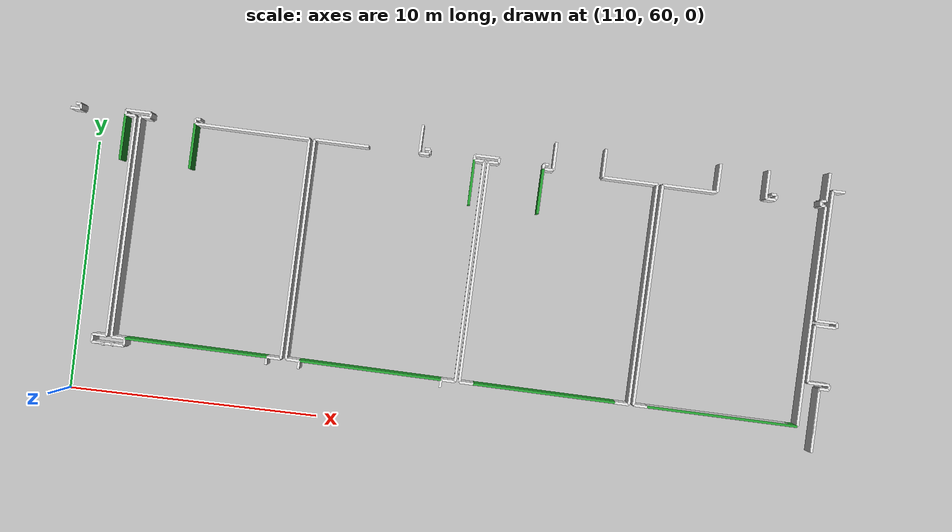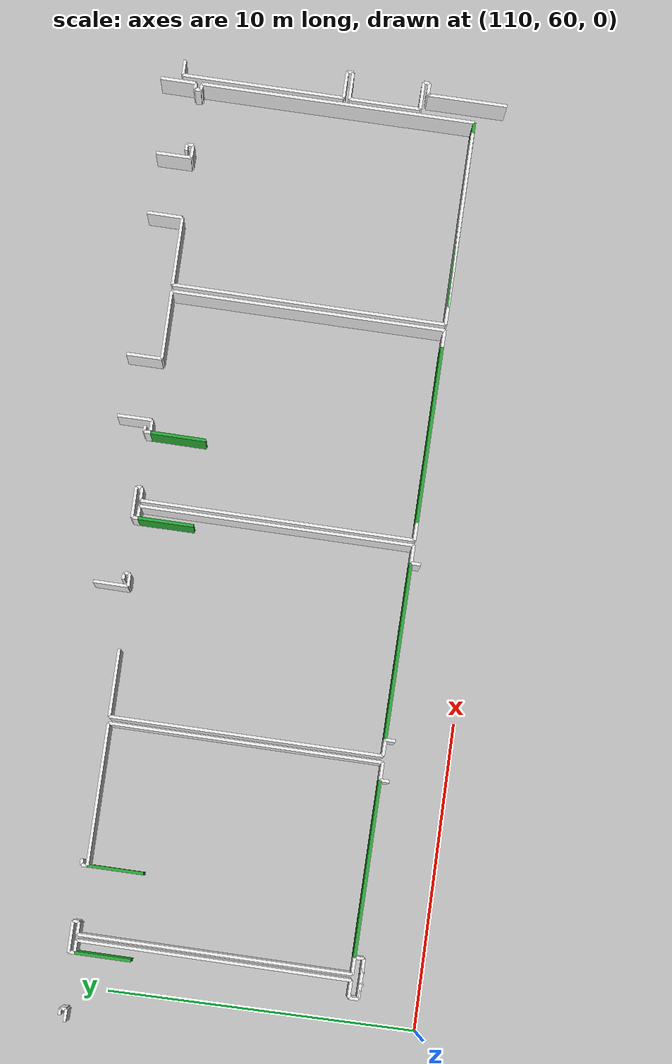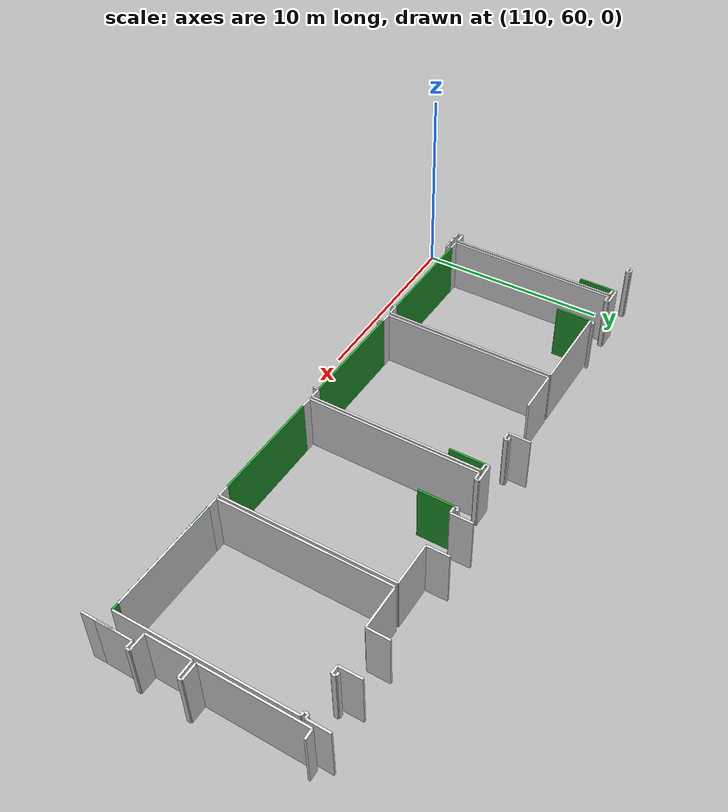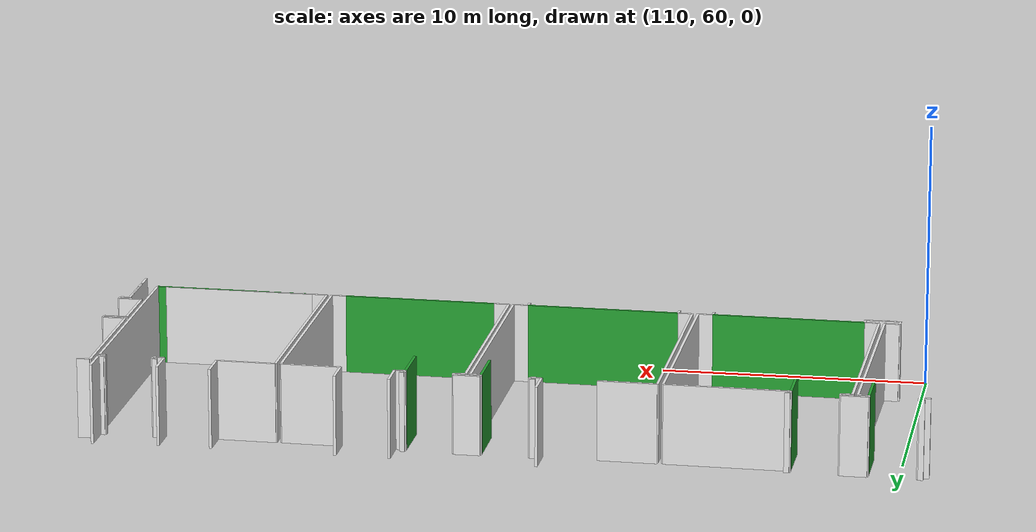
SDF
<sdf version="1.6">
 <world name="default">
  <model name="wall_127.9_70.0_1.5">
   <static>true</static>
   <pose>127.93499999988126 70.04000000003725 1.5 0 0 -1.5874614506553937</pose>
   <link name="link">
    <visual name="visual">
     <geometry><box><size>1.8002499824594067 0.1 3</size></box></geometry>
     <material>
      <script><uri>file://media/materials/scripts/gazebo.material</uri><name>Gazebo/Green</name></script>
     </material>
    </visual>
    <collision name="collision"><geometry><box><size>1.8002499824594067 0.1 3</size></box></geometry></collision>
   </link>
  </model>
  <model name="wall_125.2_70.1_1.5">
   <static>true</static>
   <pose>125.15999999997439 70.07499999995343 1.5 0 0 -1.5818456008842139</pose>
   <link name="link">
    <visual name="visual">
     <geometry><box><size>1.8101104939210282 0.1 3</size></box></geometry>
     <material>
      <script><uri>file://media/materials/scripts/gazebo.material</uri><name>Gazebo/Green</name></script>
     </material>
    </visual>
    <collision name="collision"><geometry><box><size>1.8101104939210282 0.1 3</size></box></geometry></collision>
   </link>
  </model>
  <model name="wall_113.9_70.2_1.5">
   <static>true</static>
   <pose>113.92999999999302 70.21500000008382 1.5 0 0 -1.5818456008842139</pose>
   <link name="link">
    <visual name="visual">
     <geometry><box><size>1.8101104939210282 0.1 3</size></box></geometry>
     <material>
      <script><uri>file://media/materials/scripts/gazebo.material</uri><name>Gazebo/Green</name></script>
     </material>
    </visual>
    <collision name="collision"><geometry><box><size>1.8101104939210282 0.1 3</size></box></geometry></collision>
   </link>
  </model>
  <model name="wall_111.1_70.3_1.5">
   <static>true</static>
   <pose>111.13000000000466 70.25500000012107 1.5 0 0 -1.5818456008842139</pose>
   <link name="link">
    <visual name="visual">
     <geometry><box><size>1.8101104939210282 0.1 3</size></box></geometry>
     <material>
      <script><uri>file://media/materials/scripts/gazebo.material</uri><name>Gazebo/Green</name></script>
     </material>
    </visual>
    <collision name="collision"><geometry><box><size>1.8101104939210282 0.1 3</size></box></geometry></collision>
   </link>
  </model>
  <model name="wall_115.0_62.2_1.5">
   <static>true</static>
   <pose>115.0 62.23999999999069 1.5 0 0 -0.014034166198596688</pose>
   <link name="link">
    <visual name="visual">
     <geometry><box><size>5.700561375812611 0.1 3</size></box></geometry>
     <material>
      <script><uri>file://media/materials/scripts/gazebo.material</uri><name>Gazebo/Green</name></script>
     </material>
    </visual>
    <collision name="collision"><geometry><box><size>5.700561375812611 0.1 3</size></box></geometry></collision>
   </link>
  </model>
  <model name="wall_122.0_62.2_1.5">
   <static>true</static>
   <pose>122.01499999998487 62.15500000002794 1.5 0 0 -0.015760516353173326</pose>
   <link name="link">
    <visual name="visual">
     <geometry><box><size>5.710709237940267 0.1 3</size></box></geometry>
     <material>
      <script><uri>file://media/materials/scripts/gazebo.material</uri><name>Gazebo/Green</name></script>
     </material>
    </visual>
    <collision name="collision"><geometry><box><size>5.710709237940267 0.1 3</size></box></geometry></collision>
   </link>
  </model>
  <model name="wall_129.0_62.0_1.5">
   <static>true</static>
   <pose>129.01999999998952 62.049999999813735 1.5 0 0 -0.014034166280132265</pose>
   <link name="link">
    <visual name="visual">
     <geometry><box><size>5.7005613758773475 0.1 3</size></box></geometry>
     <material>
      <script><uri>file://media/materials/scripts/gazebo.material</uri><name>Gazebo/Green</name></script>
     </material>
    </visual>
    <collision name="collision"><geometry><box><size>5.7005613758773475 0.1 3</size></box></geometry></collision>
   </link>
  </model>
  <model name="wall_136.2_62.0_1.5">
   <static>true</static>
   <pose>136.19500000000698 61.950000000186265 1.5 0 0 -0.013266220046968015</pose>
   <link name="link">
    <visual name="visual">
     <geometry><box><size>6.030530656612972 0.1 3</size></box></geometry>
     <material>
      <script><uri>file://media/materials/scripts/gazebo.material</uri><name>Gazebo/Green</name></script>
     </material>
    </visual>
    <collision name="collision"><geometry><box><size>6.030530656612972 0.1 3</size></box></geometry></collision>
   </link>
  </model>
  <model name="wall_139.9_66.0_1.5">
   <static>true</static>
   <pose>139.88000000000466 65.99500000011176 1.5 0 0 3.129965270893089</pose>
   <link name="link">
    <visual name="visual">
     <geometry><box><size>0.860058137553213 0.1 3</size></box></geometry>
     <material>
      <script><uri>file://media/materials/scripts/gazebo.material</uri><name>Gazebo/White</name></script>
     </material>
    </visual>
    <collision name="collision"><geometry><box><size>0.860058137553213 0.1 3</size></box></geometry></collision>
   </link>
  </model>
  <model name="wall_139.4_64.9_1.5">
   <static>true</static>
   <pose>139.43499999999767 64.85000000009313 1.5 0 0 -1.583839065438706</pose>
   <link name="link">
    <visual name="visual">
     <geometry><box><size>2.3001956436670468 0.1 3</size></box></geometry>
     <material>
      <script><uri>file://media/materials/scripts/gazebo.material</uri><name>Gazebo/White</name></script>
     </material>
    </visual>
    <collision name="collision"><geometry><box><size>2.3001956436670468 0.1 3</size></box></geometry></collision>
   </link>
  </model>
  <model name="wall_139.9_63.7_1.5">
   <static>true</static>
   <pose>139.85499999998137 63.69500000006519 1.5 0 0 -0.011493746993381555</pose>
   <link name="link">
    <visual name="visual">
     <geometry><box><size>0.870057469364375 0.1 3</size></box></geometry>
     <material>
      <script><uri>file://media/materials/scripts/gazebo.material</uri><name>Gazebo/White</name></script>
     </material>
    </visual>
    <collision name="collision"><geometry><box><size>0.870057469364375 0.1 3</size></box></geometry></collision>
   </link>
  </model>
  <model name="wall_109.2_71.4_1.5">
   <static>true</static>
   <pose>109.23000000001048 71.37999999988824 1.5 0 0 0.0</pose>
   <link name="link">
    <visual name="visual">
     <geometry><box><size>0.20000000001164153 0.1 3</size></box></geometry>
     <material>
      <script><uri>file://media/materials/scripts/gazebo.material</uri><name>Gazebo/White</name></script>
     </material>
    </visual>
    <collision name="collision"><geometry><box><size>0.20000000001164153 0.1 3</size></box></geometry></collision>
   </link>
  </model>
  <model name="wall_109.3_71.3_1.5">
   <static>true</static>
   <pose>109.3300000000163 71.28000000002794 1.5 0 0 -1.5707963267948966</pose>
   <link name="link">
    <visual name="visual">
     <geometry><box><size>0.19999999972060323 0.1 3</size></box></geometry>
     <material>
      <script><uri>file://media/materials/scripts/gazebo.material</uri><name>Gazebo/White</name></script>
     </material>
    </visual>
    <collision name="collision"><geometry><box><size>0.19999999972060323 0.1 3</size></box></geometry></collision>
   </link>
  </model>
  <model name="wall_111.1_71.3_1.5">
   <static>true</static>
   <pose>111.14000000001397 71.25500000012107 1.5 0 0 1.5707963267948966</pose>
   <link name="link">
    <visual name="visual">
     <geometry><box><size>0.18999999994412065 0.1 3</size></box></geometry>
     <material>
      <script><uri>file://media/materials/scripts/gazebo.material</uri><name>Gazebo/White</name></script>
     </material>
    </visual>
    <collision name="collision"><geometry><box><size>0.18999999994412065 0.1 3</size></box></geometry></collision>
   </link>
  </model>
  <model name="wall_111.6_71.3_1.5">
   <static>true</static>
   <pose>111.64000000001397 71.34499999997206 1.5 0 0 -0.009999666928784895</pose>
   <link name="link">
    <visual name="visual">
     <geometry><box><size>1.0000499987524838 0.1 3</size></box></geometry>
     <material>
      <script><uri>file://media/materials/scripts/gazebo.material</uri><name>Gazebo/White</name></script>
     </material>
    </visual>
    <collision name="collision"><geometry><box><size>1.0000499987524838 0.1 3</size></box></geometry></collision>
   </link>
  </model>
  <model name="wall_112.1_71.2_1.5">
   <static>true</static>
   <pose>112.13500000000931 71.23999999999069 1.5 0 0 -1.6207547226329644</pose>
   <link name="link">
    <visual name="visual">
     <geometry><box><size>0.20024984366642476 0.1 3</size></box></geometry>
     <material>
      <script><uri>file://media/materials/scripts/gazebo.material</uri><name>Gazebo/White</name></script>
     </material>
    </visual>
    <collision name="collision"><geometry><box><size>0.20024984366642476 0.1 3</size></box></geometry></collision>
   </link>
  </model>
  <model name="wall_113.9_71.2_1.5">
   <static>true</static>
   <pose>113.94000000000233 71.21500000008382 1.5 0 0 1.5707963267948966</pose>
   <link name="link">
    <visual name="visual">
     <geometry><box><size>0.18999999994412065 0.1 3</size></box></geometry>
     <material>
      <script><uri>file://media/materials/scripts/gazebo.material</uri><name>Gazebo/White</name></script>
     </material>
    </visual>
    <collision name="collision"><geometry><box><size>0.18999999994412065 0.1 3</size></box></geometry></collision>
   </link>
  </model>
  <model name="wall_114.0_71.3_1.5">
   <static>true</static>
   <pose>114.04000000000815 71.31000000005588 1.5 0 0 0.0</pose>
   <link name="link">
    <visual name="visual">
     <geometry><box><size>0.20000000001164153 0.1 3</size></box></geometry>
     <material>
      <script><uri>file://media/materials/scripts/gazebo.material</uri><name>Gazebo/White</name></script>
     </material>
    </visual>
    <collision name="collision"><geometry><box><size>0.20000000001164153 0.1 3</size></box></geometry></collision>
   </link>
  </model>
  <model name="wall_123.3_71.2_1.5">
   <static>true</static>
   <pose>123.26499999998487 71.18999999994412 1.5 0 0 0.0</pose>
   <link name="link">
    <visual name="visual">
     <geometry><box><size>0.21000000002095476 0.1 3</size></box></geometry>
     <material>
      <script><uri>file://media/materials/scripts/gazebo.material</uri><name>Gazebo/White</name></script>
     </material>
    </visual>
    <collision name="collision"><geometry><box><size>0.21000000002095476 0.1 3</size></box></geometry></collision>
   </link>
  </model>
  <model name="wall_123.4_71.1_1.5">
   <static>true</static>
   <pose>123.36499999999069 71.09499999997206 1.5 0 0 -1.6233793884701562</pose>
   <link name="link">
    <visual name="visual">
     <geometry><box><size>0.19026297584909185 0.1 3</size></box></geometry>
     <material>
      <script><uri>file://media/materials/scripts/gazebo.material</uri><name>Gazebo/White</name></script>
     </material>
    </visual>
    <collision name="collision"><geometry><box><size>0.19026297584909185 0.1 3</size></box></geometry></collision>
   </link>
  </model>
  <model name="wall_125.2_71.1_1.5">
   <static>true</static>
   <pose>125.1699999999837 71.07499999995343 1.5 0 0 1.5707963267948966</pose>
   <link name="link">
    <visual name="visual">
     <geometry><box><size>0.18999999994412065 0.1 3</size></box></geometry>
     <material>
      <script><uri>file://media/materials/scripts/gazebo.material</uri><name>Gazebo/White</name></script>
     </material>
    </visual>
    <collision name="collision"><geometry><box><size>0.18999999994412065 0.1 3</size></box></geometry></collision>
   </link>
  </model>
  <model name="wall_125.7_71.2_1.5">
   <static>true</static>
   <pose>125.66499999997905 71.16500000003725 1.5 0 0 -0.010100666359664784</pose>
   <link name="link">
    <visual name="visual">
     <geometry><box><size>0.9900505037507377 0.1 3</size></box></geometry>
     <material>
      <script><uri>file://media/materials/scripts/gazebo.material</uri><name>Gazebo/White</name></script>
     </material>
    </visual>
    <collision name="collision"><geometry><box><size>0.9900505037507377 0.1 3</size></box></geometry></collision>
   </link>
  </model>
  <model name="wall_126.2_71.1_1.5">
   <static>true</static>
   <pose>126.15499999999884 71.06500000017695 1.5 0 0 -1.6233793881646463</pose>
   <link name="link">
    <visual name="visual">
     <geometry><box><size>0.19026297584603252 0.1 3</size></box></geometry>
     <material>
      <script><uri>file://media/materials/scripts/gazebo.material</uri><name>Gazebo/White</name></script>
     </material>
    </visual>
    <collision name="collision"><geometry><box><size>0.19026297584603252 0.1 3</size></box></geometry></collision>
   </link>
  </model>
  <model name="wall_128.0_71.0_1.5">
   <static>true</static>
   <pose>127.95000000001164 71.04000000003725 1.5 0 0 1.5707963267948966</pose>
   <link name="link">
    <visual name="visual">
     <geometry><box><size>0.20000000018626451 0.1 3</size></box></geometry>
     <material>
      <script><uri>file://media/materials/scripts/gazebo.material</uri><name>Gazebo/White</name></script>
     </material>
    </visual>
    <collision name="collision"><geometry><box><size>0.20000000018626451 0.1 3</size></box></geometry></collision>
   </link>
  </model>
  <model name="wall_128.0_71.1_1.5">
   <static>true</static>
   <pose>128.0450000000128 71.13500000000931 1.5 0 0 -0.0525830628812194</pose>
   <link name="link">
    <visual name="visual">
     <geometry><box><size>0.19026297591945637 0.1 3</size></box></geometry>
     <material>
      <script><uri>file://media/materials/scripts/gazebo.material</uri><name>Gazebo/White</name></script>
     </material>
    </visual>
    <collision name="collision"><geometry><box><size>0.19026297591945637 0.1 3</size></box></geometry></collision>
   </link>
  </model>
  <model name="wall_137.2_71.0_1.5">
   <static>true</static>
   <pose>137.2149999999965 70.99500000011176 1.5 0 0 -0.052583060437140824</pose>
   <link name="link">
    <visual name="visual">
     <geometry><box><size>0.19026297589498176 0.1 3</size></box></geometry>
     <material>
      <script><uri>file://media/materials/scripts/gazebo.material</uri><name>Gazebo/White</name></script>
     </material>
    </visual>
    <collision name="collision"><geometry><box><size>0.19026297589498176 0.1 3</size></box></geometry></collision>
   </link>
  </model>
  <model name="wall_137.3_70.9_1.5">
   <static>true</static>
   <pose>137.30999999999767 70.89000000013039 1.5 0 0 -1.5707963267948966</pose>
   <link name="link">
    <visual name="visual">
     <geometry><box><size>0.20000000018626451 0.1 3</size></box></geometry>
     <material>
      <script><uri>file://media/materials/scripts/gazebo.material</uri><name>Gazebo/White</name></script>
     </material>
    </visual>
    <collision name="collision"><geometry><box><size>0.20000000018626451 0.1 3</size></box></geometry></collision>
   </link>
  </model>
  <model name="wall_139.1_70.9_1.5">
   <static>true</static>
   <pose>139.11999999999534 70.87000000011176 1.5 0 0 1.5707963267948966</pose>
   <link name="link">
    <visual name="visual">
     <geometry><box><size>0.20000000018626451 0.1 3</size></box></geometry>
     <material>
      <script><uri>file://media/materials/scripts/gazebo.material</uri><name>Gazebo/White</name></script>
     </material>
    </visual>
    <collision name="collision"><geometry><box><size>0.20000000018626451 0.1 3</size></box></geometry></collision>
   </link>
  </model>
  <model name="wall_139.2_71.0_1.5">
   <static>true</static>
   <pose>139.22000000000116 70.97000000020489 1.5 0 0 0.0</pose>
   <link name="link">
    <visual name="visual">
     <geometry><box><size>0.20000000001164153 0.1 3</size></box></geometry>
     <material>
      <script><uri>file://media/materials/scripts/gazebo.material</uri><name>Gazebo/White</name></script>
     </material>
    </visual>
    <collision name="collision"><geometry><box><size>0.20000000001164153 0.1 3</size></box></geometry></collision>
   </link>
  </model>
  <model name="wall_139.3_71.5_1.5">
   <static>true</static>
   <pose>139.3300000000163 71.54000000003725 1.5 0 0 1.553254266716002</pose>
   <link name="link">
    <visual name="visual">
     <geometry><box><size>1.1401754247642402 0.1 3</size></box></geometry>
     <material>
      <script><uri>file://media/materials/scripts/gazebo.material</uri><name>Gazebo/White</name></script>
     </material>
    </visual>
    <collision name="collision"><geometry><box><size>1.1401754247642402 0.1 3</size></box></geometry></collision>
   </link>
  </model>
  <model name="wall_139.8_71.4_1.5">
   <static>true</static>
   <pose>139.77500000002328 71.41000000014901 1.5 0 0 3.141592653589793</pose>
   <link name="link">
    <visual name="visual">
     <geometry><box><size>0.4899999999906868 0.1 3</size></box></geometry>
     <material>
      <script><uri>file://media/materials/scripts/gazebo.material</uri><name>Gazebo/White</name></script>
     </material>
    </visual>
    <collision name="collision"><geometry><box><size>0.4899999999906868 0.1 3</size></box></geometry></collision>
   </link>
  </model>
  <model name="wall_139.5_68.8_1.5">
   <static>true</static>
   <pose>139.49500000002445 68.80000000004657 1.5 0 0 -1.5842054847435334</pose>
   <link name="link">
    <visual name="visual">
     <geometry><box><size>5.220469327765468 0.1 3</size></box></geometry>
     <material>
      <script><uri>file://media/materials/scripts/gazebo.material</uri><name>Gazebo/White</name></script>
     </material>
    </visual>
    <collision name="collision"><geometry><box><size>5.220469327765468 0.1 3</size></box></geometry></collision>
   </link>
  </model>
  <model name="wall_139.9_66.2_1.5">
   <static>true</static>
   <pose>139.8850000000093 66.18500000005588 1.5 0 0 -0.011764162887155684</pose>
   <link name="link">
    <visual name="visual">
     <geometry><box><size>0.8500588214682255 0.1 3</size></box></geometry>
     <material>
      <script><uri>file://media/materials/scripts/gazebo.material</uri><name>Gazebo/White</name></script>
     </material>
    </visual>
    <collision name="collision"><geometry><box><size>0.8500588214682255 0.1 3</size></box></geometry></collision>
   </link>
  </model>
  <model name="wall_140.3_66.1_1.5">
   <static>true</static>
   <pose>140.30999999999767 66.08500000019558 1.5 0 0 -1.5707963267948966</pose>
   <link name="link">
    <visual name="visual">
     <geometry><box><size>0.18999999994412065 0.1 3</size></box></geometry>
     <material>
      <script><uri>file://media/materials/scripts/gazebo.material</uri><name>Gazebo/White</name></script>
     </material>
    </visual>
    <collision name="collision"><geometry><box><size>0.18999999994412065 0.1 3</size></box></geometry></collision>
   </link>
  </model>
  <model name="wall_118.5_66.6_1.5">
   <static>true</static>
   <pose>118.47999999998137 66.61999999987893 1.5 0 0 1.557253136818869</pose>
   <link name="link">
    <visual name="visual">
     <geometry><box><size>8.860812603688696 0.1 3</size></box></geometry>
     <material>
      <script><uri>file://media/materials/scripts/gazebo.material</uri><name>Gazebo/White</name></script>
     </material>
    </visual>
    <collision name="collision"><geometry><box><size>8.860812603688696 0.1 3</size></box></geometry></collision>
   </link>
  </model>
  <model name="wall_116.2_71.1_1.5">
   <static>true</static>
   <pose>116.23999999999069 71.08499999996275 1.5 0 0 3.1263764366827713</pose>
   <link name="link">
    <visual name="visual">
     <geometry><box><size>4.60053257784656 0.1 3</size></box></geometry>
     <material>
      <script><uri>file://media/materials/scripts/gazebo.material</uri><name>Gazebo/White</name></script>
     </material>
    </visual>
    <collision name="collision"><geometry><box><size>4.60053257784656 0.1 3</size></box></geometry></collision>
   </link>
  </model>
  <model name="wall_111.9_71.1_1.5">
   <static>true</static>
   <pose>111.92999999999302 71.14500000001863 1.5 0 0 3.116597860530772</pose>
   <link name="link">
    <visual name="visual">
     <geometry><box><size>0.40012498049254075 0.1 3</size></box></geometry>
     <material>
      <script><uri>file://media/materials/scripts/gazebo.material</uri><name>Gazebo/White</name></script>
     </material>
    </visual>
    <collision name="collision"><geometry><box><size>0.40012498049254075 0.1 3</size></box></geometry></collision>
   </link>
  </model>
  <model name="wall_111.7_66.7_1.5">
   <static>true</static>
   <pose>111.6699999999837 66.71999999997206 1.5 0 0 -1.5843395167709244</pose>
   <link name="link">
    <visual name="visual">
     <geometry><box><size>8.860812603688696 0.1 3</size></box></geometry>
     <material>
      <script><uri>file://media/materials/scripts/gazebo.material</uri><name>Gazebo/White</name></script>
     </material>
    </visual>
    <collision name="collision"><geometry><box><size>8.860812603688696 0.1 3</size></box></geometry></collision>
   </link>
  </model>
  <model name="wall_111.9_62.3_1.5">
   <static>true</static>
   <pose>111.88000000000466 62.28499999991618 1.5 0 0 -0.018516402514992796</pose>
   <link name="link">
    <visual name="visual">
     <geometry><box><size>0.540092584697361 0.1 3</size></box></geometry>
     <material>
      <script><uri>file://media/materials/scripts/gazebo.material</uri><name>Gazebo/White</name></script>
     </material>
    </visual>
    <collision name="collision"><geometry><box><size>0.540092584697361 0.1 3</size></box></geometry></collision>
   </link>
  </model>
  <model name="wall_118.1_62.2_1.5">
   <static>true</static>
   <pose>118.13499999998021 62.19500000006519 1.5 0 0 -0.01754206048187066</pose>
   <link name="link">
    <visual name="visual">
     <geometry><box><size>0.5700877125608004 0.1 3</size></box></geometry>
     <material>
      <script><uri>file://media/materials/scripts/gazebo.material</uri><name>Gazebo/White</name></script>
     </material>
    </visual>
    <collision name="collision"><geometry><box><size>0.5700877125608004 0.1 3</size></box></geometry></collision>
   </link>
  </model>
  <model name="wall_125.5_66.5_1.5">
   <static>true</static>
   <pose>125.5 66.53500000014901 1.5 0 0 1.5572684034898048</pose>
   <link name="link">
    <visual name="visual">
     <geometry><box><size>8.870811687888628 0.1 3</size></box></geometry>
     <material>
      <script><uri>file://media/materials/scripts/gazebo.material</uri><name>Gazebo/White</name></script>
     </material>
    </visual>
    <collision name="collision"><geometry><box><size>8.870811687888628 0.1 3</size></box></geometry></collision>
   </link>
  </model>
  <model name="wall_125.4_71.0_1.5">
   <static>true</static>
   <pose>125.36499999999069 70.97500000009313 1.5 0 0 3.115957245641779</pose>
   <link name="link">
    <visual name="visual">
     <geometry><box><size>0.3901281840708591 0.1 3</size></box></geometry>
     <material>
      <script><uri>file://media/materials/scripts/gazebo.material</uri><name>Gazebo/White</name></script>
     </material>
    </visual>
    <collision name="collision"><geometry><box><size>0.3901281840708591 0.1 3</size></box></geometry></collision>
   </link>
  </model>
  <model name="wall_123.2_71.0_1.5">
   <static>true</static>
   <pose>123.16000000000349 71.0 1.5 0 0 3.141592653589793</pose>
   <link name="link">
    <visual name="visual">
     <geometry><box><size>0.3999999999650754 0.1 3</size></box></geometry>
     <material>
      <script><uri>file://media/materials/scripts/gazebo.material</uri><name>Gazebo/White</name></script>
     </material>
    </visual>
    <collision name="collision"><geometry><box><size>0.3999999999650754 0.1 3</size></box></geometry></collision>
   </link>
  </model>
  <model name="wall_123.0_71.6_1.5">
   <static>true</static>
   <pose>122.97000000000116 71.56499999994412 1.5 0 0 1.553099059570393</pose>
   <link name="link">
    <visual name="visual">
     <geometry><box><size>1.130176977179168 0.1 3</size></box></geometry>
     <material>
      <script><uri>file://media/materials/scripts/gazebo.material</uri><name>Gazebo/White</name></script>
     </material>
    </visual>
    <collision name="collision"><geometry><box><size>1.130176977179168 0.1 3</size></box></geometry></collision>
   </link>
  </model>
  <model name="wall_119.8_71.0_1.5">
   <static>true</static>
   <pose>119.83999999999651 71.03499999991618 1.5 0 0 3.1278320544015297</pose>
   <link name="link">
    <visual name="visual">
     <geometry><box><size>2.1802064122365232 0.1 3</size></box></geometry>
     <material>
      <script><uri>file://media/materials/scripts/gazebo.material</uri><name>Gazebo/White</name></script>
     </material>
    </visual>
    <collision name="collision"><geometry><box><size>2.1802064122365232 0.1 3</size></box></geometry></collision>
   </link>
  </model>
  <model name="wall_118.7_66.6_1.5">
   <static>true</static>
   <pose>118.69000000000233 66.62999999988824 1.5 0 0 -1.5843701537129677</pose>
   <link name="link">
    <visual name="visual">
     <geometry><box><size>8.840814441971077 0.1 3</size></box></geometry>
     <material>
      <script><uri>file://media/materials/scripts/gazebo.material</uri><name>Gazebo/White</name></script>
     </material>
    </visual>
    <collision name="collision"><geometry><box><size>8.840814441971077 0.1 3</size></box></geometry></collision>
   </link>
  </model>
  <model name="wall_118.9_62.2_1.5">
   <static>true</static>
   <pose>118.89499999998952 62.205000000074506 1.5 0 0 -0.018865685601167047</pose>
   <link name="link">
    <visual name="visual">
     <geometry><box><size>0.5300943311934637 0.1 3</size></box></geometry>
     <material>
      <script><uri>file://media/materials/scripts/gazebo.material</uri><name>Gazebo/White</name></script>
     </material>
    </visual>
    <collision name="collision"><geometry><box><size>0.5300943311934637 0.1 3</size></box></geometry></collision>
   </link>
  </model>
  <model name="wall_125.2_62.1_1.5">
   <static>true</static>
   <pose>125.15499999999884 62.10499999998137 1.5 0 0 -0.017542059665172402</pose>
   <link name="link">
    <visual name="visual">
     <geometry><box><size>0.5700877125526321 0.1 3</size></box></geometry>
     <material>
      <script><uri>file://media/materials/scripts/gazebo.material</uri><name>Gazebo/White</name></script>
     </material>
    </visual>
    <collision name="collision"><geometry><box><size>0.5700877125526321 0.1 3</size></box></geometry></collision>
   </link>
  </model>
  <model name="wall_132.5_66.4_1.5">
   <static>true</static>
   <pose>132.4899999999907 66.42999999993481 1.5 0 0 1.557253136818869</pose>
   <link name="link">
    <visual name="visual">
     <geometry><box><size>8.860812603688696 0.1 3</size></box></geometry>
     <material>
      <script><uri>file://media/materials/scripts/gazebo.material</uri><name>Gazebo/White</name></script>
     </material>
    </visual>
    <collision name="collision"><geometry><box><size>8.860812603688696 0.1 3</size></box></geometry></collision>
   </link>
  </model>
  <model name="wall_131.4_70.9_1.5">
   <static>true</static>
   <pose>131.44999999998254 70.875 1.5 0 0 3.127957134969853</pose>
   <link name="link">
    <visual name="visual">
     <geometry><box><size>2.2002045359617974 0.1 3</size></box></geometry>
     <material>
      <script><uri>file://media/materials/scripts/gazebo.material</uri><name>Gazebo/White</name></script>
     </material>
    </visual>
    <collision name="collision"><geometry><box><size>2.2002045359617974 0.1 3</size></box></geometry></collision>
   </link>
  </model>
  <model name="wall_130.4_71.5_1.5">
   <static>true</static>
   <pose>130.35499999998137 71.45999999996275 1.5 0 0 1.5620246219397054</pose>
   <link name="link">
    <visual name="visual">
     <geometry><box><size>1.1400438584702595 0.1 3</size></box></geometry>
     <material>
      <script><uri>file://media/materials/scripts/gazebo.material</uri><name>Gazebo/White</name></script>
     </material>
    </visual>
    <collision name="collision"><geometry><box><size>1.1400438584702595 0.1 3</size></box></geometry></collision>
   </link>
  </model>
  <model name="wall_128.4_71.5_1.5">
   <static>true</static>
   <pose>128.35499999998137 71.5 1.5 0 0 -1.5797246609821571</pose>
   <link name="link">
    <visual name="visual">
     <geometry><box><size>1.1200446420792904 0.1 3</size></box></geometry>
     <material>
      <script><uri>file://media/materials/scripts/gazebo.material</uri><name>Gazebo/White</name></script>
     </material>
    </visual>
    <collision name="collision"><geometry><box><size>1.1200446420792904 0.1 3</size></box></geometry></collision>
   </link>
  </model>
  <model name="wall_128.1_70.9_1.5">
   <static>true</static>
   <pose>128.14999999999418 70.93999999994412 1.5 0 0 3.141592653589793</pose>
   <link name="link">
    <visual name="visual">
     <geometry><box><size>0.3999999999650754 0.1 3</size></box></geometry>
     <material>
      <script><uri>file://media/materials/scripts/gazebo.material</uri><name>Gazebo/White</name></script>
     </material>
    </visual>
    <collision name="collision"><geometry><box><size>0.3999999999650754 0.1 3</size></box></geometry></collision>
   </link>
  </model>
  <model name="wall_125.9_71.0_1.5">
   <static>true</static>
   <pose>125.94500000000698 70.97000000020489 1.5 0 0 3.141592653589793</pose>
   <link name="link">
    <visual name="visual">
     <geometry><box><size>0.4100000000325963 0.1 3</size></box></geometry>
     <material>
      <script><uri>file://media/materials/scripts/gazebo.material</uri><name>Gazebo/White</name></script>
     </material>
    </visual>
    <collision name="collision"><geometry><box><size>0.4100000000325963 0.1 3</size></box></geometry></collision>
   </link>
  </model>
  <model name="wall_125.7_66.5_1.5">
   <static>true</static>
   <pose>125.67499999998836 66.53500000014901 1.5 0 0 -1.5854514218446472</pose>
   <link name="link">
    <visual name="visual">
     <geometry><box><size>8.87095259833936 0.1 3</size></box></geometry>
     <material>
      <script><uri>file://media/materials/scripts/gazebo.material</uri><name>Gazebo/White</name></script>
     </material>
    </visual>
    <collision name="collision"><geometry><box><size>8.87095259833936 0.1 3</size></box></geometry></collision>
   </link>
  </model>
  <model name="wall_125.9_62.1_1.5">
   <static>true</static>
   <pose>125.88999999998487 62.09499999997206 1.5 0 0 -0.017855245571888664</pose>
   <link name="link">
    <visual name="visual">
     <geometry><box><size>0.5600892785996132 0.1 3</size></box></geometry>
     <material>
      <script><uri>file://media/materials/scripts/gazebo.material</uri><name>Gazebo/White</name></script>
     </material>
    </visual>
    <collision name="collision"><geometry><box><size>0.5600892785996132 0.1 3</size></box></geometry></collision>
   </link>
  </model>
  <model name="wall_132.1_62.0_1.5">
   <static>true</static>
   <pose>132.14999999999418 62.00499999988824 1.5 0 0 -0.017855244740615724</pose>
   <link name="link">
    <visual name="visual">
     <geometry><box><size>0.5600892785912992 0.1 3</size></box></geometry>
     <material>
      <script><uri>file://media/materials/scripts/gazebo.material</uri><name>Gazebo/White</name></script>
     </material>
    </visual>
    <collision name="collision"><geometry><box><size>0.5600892785912992 0.1 3</size></box></geometry></collision>
   </link>
  </model>
  <model name="wall_136.0_62.0_1.5">
   <static>true</static>
   <pose>136.02499999999418 61.955000000074506 1.5 0 0 3.1292909894057774</pose>
   <link name="link">
    <visual name="visual">
     <geometry><box><size>5.690430563680416 0.1 3</size></box></geometry>
     <material>
      <script><uri>file://media/materials/scripts/gazebo.material</uri><name>Gazebo/White</name></script>
     </material>
    </visual>
    <collision name="collision"><geometry><box><size>5.690430563680416 0.1 3</size></box></geometry></collision>
   </link>
  </model>
  <model name="wall_132.9_62.0_1.5">
   <static>true</static>
   <pose>132.89999999999418 61.99500000011176 1.5 0 0 3.1237374088491774</pose>
   <link name="link">
    <visual name="visual">
     <geometry><box><size>0.5600892785912992 0.1 3</size></box></geometry>
     <material>
      <script><uri>file://media/materials/scripts/gazebo.material</uri><name>Gazebo/White</name></script>
     </material>
    </visual>
    <collision name="collision"><geometry><box><size>0.5600892785912992 0.1 3</size></box></geometry></collision>
   </link>
  </model>
  <model name="wall_132.7_66.4_1.5">
   <static>true</static>
   <pose>132.69000000000233 66.42999999993481 1.5 0 0 1.5549962873031096</pose>
   <link name="link">
    <visual name="visual">
     <geometry><box><size>8.861106025643384 0.1 3</size></box></geometry>
     <material>
      <script><uri>file://media/materials/scripts/gazebo.material</uri><name>Gazebo/White</name></script>
     </material>
    </visual>
    <collision name="collision"><geometry><box><size>8.861106025643384 0.1 3</size></box></geometry></collision>
   </link>
  </model>
  <model name="wall_133.9_70.8_1.5">
   <static>true</static>
   <pose>133.85500000001048 70.84499999997206 1.5 0 0 -0.013697773279311262</pose>
   <link name="link">
    <visual name="visual">
     <geometry><box><size>2.190205469812799 0.1 3</size></box></geometry>
     <material>
      <script><uri>file://media/materials/scripts/gazebo.material</uri><name>Gazebo/White</name></script>
     </material>
    </visual>
    <collision name="collision"><geometry><box><size>2.190205469812799 0.1 3</size></box></geometry></collision>
   </link>
  </model>
  <model name="wall_135.0_71.4_1.5">
   <static>true</static>
   <pose>134.95999999999185 71.4000000001397 1.5 0 0 1.5532542667742097</pose>
   <link name="link">
    <visual name="visual">
     <geometry><box><size>1.1401754252288088 0.1 3</size></box></geometry>
     <material>
      <script><uri>file://media/materials/scripts/gazebo.material</uri><name>Gazebo/White</name></script>
     </material>
    </visual>
    <collision name="collision"><geometry><box><size>1.1401754252288088 0.1 3</size></box></geometry></collision>
   </link>
  </model>
  <model name="wall_136.9_71.4_1.5">
   <static>true</static>
   <pose>136.91499999997905 71.36999999987893 1.5 0 0 -1.579568031646505</pose>
   <link name="link">
    <visual name="visual">
     <geometry><box><size>1.1400438589359028 0.1 3</size></box></geometry>
     <material>
      <script><uri>file://media/materials/scripts/gazebo.material</uri><name>Gazebo/White</name></script>
     </material>
    </visual>
    <collision name="collision"><geometry><box><size>1.1400438589359028 0.1 3</size></box></geometry></collision>
   </link>
  </model>
  <model name="wall_137.1_70.8_1.5">
   <static>true</static>
   <pose>137.10999999998603 70.7949999999255 1.5 0 0 -0.02499479305902136</pose>
   <link name="link">
    <visual name="visual">
     <geometry><box><size>0.40012498049254075 0.1 3</size></box></geometry>
     <material>
      <script><uri>file://media/materials/scripts/gazebo.material</uri><name>Gazebo/White</name></script>
     </material>
    </visual>
    <collision name="collision"><geometry><box><size>0.40012498049254075 0.1 3</size></box></geometry></collision>
   </link>
  </model>
  <model name="wall_139.2_70.8_1.5">
   <static>true</static>
   <pose>139.22000000000116 70.77000000001863 1.5 0 0 0.0</pose>
   <link name="link">
    <visual name="visual">
     <geometry><box><size>0.20000000001164153 0.1 3</size></box></geometry>
     <material>
      <script><uri>file://media/materials/scripts/gazebo.material</uri><name>Gazebo/White</name></script>
     </material>
    </visual>
    <collision name="collision"><geometry><box><size>0.20000000001164153 0.1 3</size></box></geometry></collision>
   </link>
  </model>
  <model name="wall_139.3_66.3_1.5">
   <static>true</static>
   <pose>139.26500000001397 66.34000000008382 1.5 0 0 -1.583211038835171</pose>
   <link name="link">
    <visual name="visual">
     <geometry><box><size>8.860682817801711 0.1 3</size></box></geometry>
     <material>
      <script><uri>file://media/materials/scripts/gazebo.material</uri><name>Gazebo/White</name></script>
     </material>
    </visual>
    <collision name="collision"><geometry><box><size>8.860682817801711 0.1 3</size></box></geometry></collision>
   </link>
  </model>
  <model name="wall_111.5_66.7_1.5">
   <static>true</static>
   <pose>111.47499999997672 66.7249999998603 1.5 0 0 1.5561081176441238</pose>
   <link name="link">
    <visual name="visual">
     <geometry><box><size>8.850954750853134 0.1 3</size></box></geometry>
     <material>
      <script><uri>file://media/materials/scripts/gazebo.material</uri><name>Gazebo/White</name></script>
     </material>
    </visual>
    <collision name="collision"><geometry><box><size>8.850954750853134 0.1 3</size></box></geometry></collision>
   </link>
  </model>
  <model name="wall_111.3_71.2_1.5">
   <static>true</static>
   <pose>111.33999999999651 71.15500000002794 1.5 0 0 3.11659785936371</pose>
   <link name="link">
    <visual name="visual">
     <geometry><box><size>0.40012498044598915 0.1 3</size></box></geometry>
     <material>
      <script><uri>file://media/materials/scripts/gazebo.material</uri><name>Gazebo/White</name></script>
     </material>
    </visual>
    <collision name="collision"><geometry><box><size>0.40012498044598915 0.1 3</size></box></geometry></collision>
   </link>
  </model>
  <model name="wall_109.1_71.2_1.5">
   <static>true</static>
   <pose>109.13000000000466 71.18500000005588 1.5 0 0 3.116597860530772</pose>
   <link name="link">
    <visual name="visual">
     <geometry><box><size>0.40012498049254075 0.1 3</size></box></geometry>
     <material>
      <script><uri>file://media/materials/scripts/gazebo.material</uri><name>Gazebo/White</name></script>
     </material>
    </visual>
    <collision name="collision"><geometry><box><size>0.40012498049254075 0.1 3</size></box></geometry></collision>
   </link>
  </model>
  <model name="wall_111.1_62.3_1.5">
   <static>true</static>
   <pose>111.12999999997555 62.30499999993481 1.5 0 0 -0.017855245571888664</pose>
   <link name="link">
    <visual name="visual">
     <geometry><box><size>0.5600892785996132 0.1 3</size></box></geometry>
     <material>
      <script><uri>file://media/materials/scripts/gazebo.material</uri><name>Gazebo/White</name></script>
     </material>
    </visual>
    <collision name="collision"><geometry><box><size>0.5600892785996132 0.1 3</size></box></geometry></collision>
   </link>
  </model>
  <model name="wall_110.8_62.2_1.5">
   <static>true</static>
   <pose>110.84999999997672 62.15500000002794 1.5 0 0 -1.5707963267948966</pose>
   <link name="link">
    <visual name="visual">
     <geometry><box><size>0.31000000005587935 0.1 3</size></box></geometry>
     <material>
      <script><uri>file://media/materials/scripts/gazebo.material</uri><name>Gazebo/White</name></script>
     </material>
    </visual>
    <collision name="collision"><geometry><box><size>0.31000000005587935 0.1 3</size></box></geometry></collision>
   </link>
  </model>
  <model name="wall_111.1_62.0_1.5">
   <static>true</static>
   <pose>111.10999999998603 61.99500000011176 1.5 0 0 -0.01922839866933633</pose>
   <link name="link">
    <visual name="visual">
     <geometry><box><size>0.5200961449721592 0.1 3</size></box></geometry>
     <material>
      <script><uri>file://media/materials/scripts/gazebo.material</uri><name>Gazebo/White</name></script>
     </material>
    </visual>
    <collision name="collision"><geometry><box><size>0.5200961449721592 0.1 3</size></box></geometry></collision>
   </link>
  </model>
  <model name="wall_111.3_62.0_1.5">
   <static>true</static>
   <pose>111.31500000000233 61.96000000019558 1.5 0 0 -2.642245931464764</pose>
   <link name="link">
    <visual name="visual">
     <geometry><box><size>0.12529964087591056 0.1 3</size></box></geometry>
     <material>
      <script><uri>file://media/materials/scripts/gazebo.material</uri><name>Gazebo/White</name></script>
     </material>
    </visual>
    <collision name="collision"><geometry><box><size>0.12529964087591056 0.1 3</size></box></geometry></collision>
   </link>
  </model>
  <model name="wall_111.7_62.0_1.5">
   <static>true</static>
   <pose>111.67999999999302 61.97000000020489 1.5 0 0 2.6779450440069104</pose>
   <link name="link">
    <visual name="visual">
     <geometry><box><size>0.08944271907916658 0.1 3</size></box></geometry>
     <material>
      <script><uri>file://media/materials/scripts/gazebo.material</uri><name>Gazebo/White</name></script>
     </material>
    </visual>
    <collision name="collision"><geometry><box><size>0.08944271907916658 0.1 3</size></box></geometry></collision>
   </link>
  </model>
  <model name="wall_111.9_62.0_1.5">
   <static>true</static>
   <pose>111.89000000001397 61.985000000102445 1.5 0 0 -0.019997334457244633</pose>
   <link name="link">
    <visual name="visual">
     <geometry><box><size>0.5000999900068415 0.1 3</size></box></geometry>
     <material>
      <script><uri>file://media/materials/scripts/gazebo.material</uri><name>Gazebo/White</name></script>
     </material>
    </visual>
    <collision name="collision"><geometry><box><size>0.5000999900068415 0.1 3</size></box></geometry></collision>
   </link>
  </model>
  <model name="wall_112.1_62.1_1.5">
   <static>true</static>
   <pose>112.14500000001863 62.12999999988824 1.5 0 0 1.5374753308649667</pose>
   <link name="link">
    <visual name="visual">
     <geometry><box><size>0.30016662021022184 0.1 3</size></box></geometry>
     <material>
      <script><uri>file://media/materials/scripts/gazebo.material</uri><name>Gazebo/White</name></script>
     </material>
    </visual>
    <collision name="collision"><geometry><box><size>0.30016662021022184 0.1 3</size></box></geometry></collision>
   </link>
  </model>
  <model name="wall_117.8_62.1_1.5">
   <static>true</static>
   <pose>117.84999999997672 62.050000000046566 1.5 0 0 -1.5707963267948966</pose>
   <link name="link">
    <visual name="visual">
     <geometry><box><size>0.3000000002793968 0.1 3</size></box></geometry>
     <material>
      <script><uri>file://media/materials/scripts/gazebo.material</uri><name>Gazebo/White</name></script>
     </material>
    </visual>
    <collision name="collision"><geometry><box><size>0.3000000002793968 0.1 3</size></box></geometry></collision>
   </link>
  </model>
  <model name="wall_119.2_62.0_1.5">
   <static>true</static>
   <pose>119.15499999999884 62.04000000003725 1.5 0 0 1.5395564935463497</pose>
   <link name="link">
    <visual name="visual">
     <geometry><box><size>0.320156212167993 0.1 3</size></box></geometry>
     <material>
      <script><uri>file://media/materials/scripts/gazebo.material</uri><name>Gazebo/White</name></script>
     </material>
    </visual>
    <collision name="collision"><geometry><box><size>0.320156212167993 0.1 3</size></box></geometry></collision>
   </link>
  </model>
  <model name="wall_124.9_62.0_1.5">
   <static>true</static>
   <pose>124.86499999999069 61.954999999841675 1.5 0 0 -1.6030432092543534</pose>
   <link name="link">
    <visual name="visual">
     <geometry><box><size>0.310161248441567 0.1 3</size></box></geometry>
     <material>
      <script><uri>file://media/materials/scripts/gazebo.material</uri><name>Gazebo/White</name></script>
     </material>
    </visual>
    <collision name="collision"><geometry><box><size>0.310161248441567 0.1 3</size></box></geometry></collision>
   </link>
  </model>
  <model name="wall_139.9_62.6_1.5">
   <static>true</static>
   <pose>139.89999999999418 62.56999999983236 1.5 0 0 1.5601584302397742</pose>
   <link name="link">
    <visual name="visual">
     <geometry><box><size>1.88010637985679 0.1 3</size></box></geometry>
     <material>
      <script><uri>file://media/materials/scripts/gazebo.material</uri><name>Gazebo/White</name></script>
     </material>
    </visual>
    <collision name="collision"><geometry><box><size>1.88010637985679 0.1 3</size></box></geometry></collision>
   </link>
  </model>
  <model name="wall_140.1_63.5_1.5">
   <static>true</static>
   <pose>140.09500000000116 63.50499999988824 1.5 0 0 -0.027020448579695773</pose>
   <link name="link">
    <visual name="visual">
     <geometry><box><size>0.3701351105139276 0.1 3</size></box></geometry>
     <material>
      <script><uri>file://media/materials/scripts/gazebo.material</uri><name>Gazebo/White</name></script>
     </material>
    </visual>
    <collision name="collision"><geometry><box><size>0.3701351105139276 0.1 3</size></box></geometry></collision>
   </link>
  </model>
  <model name="wall_140.3_63.6_1.5">
   <static>true</static>
   <pose>140.2850000000035 63.59499999997206 1.5 0 0 1.5182132654251468</pose>
   <link name="link">
    <visual name="visual">
     <geometry><box><size>0.19026297584603252 0.1 3</size></box></geometry>
     <material>
      <script><uri>file://media/materials/scripts/gazebo.material</uri><name>Gazebo/White</name></script>
     </material>
    </visual>
    <collision name="collision"><geometry><box><size>0.19026297584603252 0.1 3</size></box></geometry></collision>
   </link>
  </model>
  <model name="wall_111.5_62.0_1.5">
   <static>true</static>
   <pose>111.49499999999534 61.98999999999069 1.5 0 0 -0.015502633939004449</pose>
   <link name="link">
    <visual name="visual">
     <geometry><box><size>1.2901550294816735 0.1 3</size></box></geometry>
     <material>
      <script><uri>file://media/materials/scripts/gazebo.material</uri><name>Gazebo/White</name></script>
     </material>
    </visual>
    <collision name="collision"><geometry><box><size>1.2901550294816735 0.1 3</size></box></geometry></collision>
   </link>
  </model>
  <model name="wall_139.9_62.2_1.5">
   <static>true</static>
   <pose>139.89499999998952 62.2249999998603 1.5 0 0 1.559123705215765</pose>
   <link name="link">
    <visual name="visual">
     <geometry><box><size>2.570175091143894 0.1 3</size></box></geometry>
     <material>
      <script><uri>file://media/materials/scripts/gazebo.material</uri><name>Gazebo/White</name></script>
     </material>
    </visual>
    <collision name="collision"><geometry><box><size>2.570175091143894 0.1 3</size></box></geometry></collision>
   </link>
  </model>
 </world>
</sdf>
